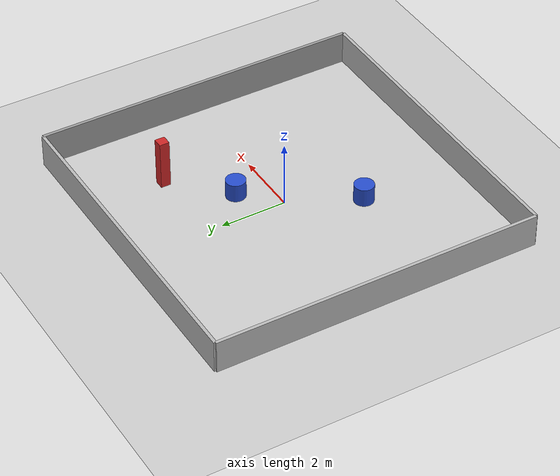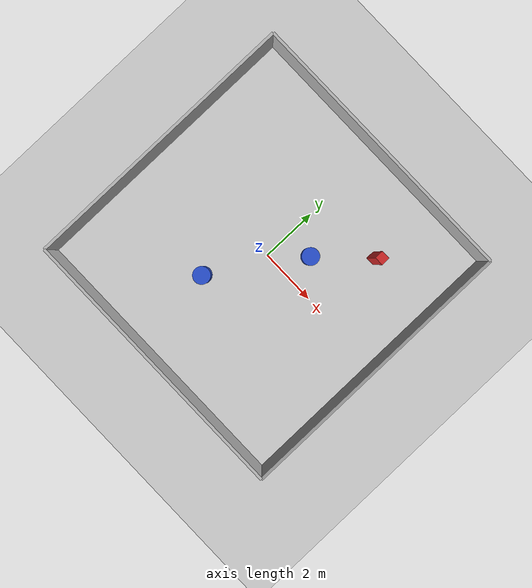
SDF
<?xml version="1.0" ?>
<sdf version="1.5">
  <world name="default">
    <include>
      <uri>model://ground_plane</uri>
    </include>
    <include>
      <uri>model://sun</uri>
    </include>

    <!-- 1. 封闭场所 (10m x 10m) -->
    <model name="room_walls">
      <static>true</static>
      <link name="link">
        <collision name="north"><pose>5 0 0.5 0 0 0</pose><geometry><box><size>0.1 10 1</size></box></geometry></collision>
        <visual name="north_v"><pose>5 0 0.5 0 0 0</pose><geometry><box><size>0.1 10 1</size></box></geometry><material><script><name>Gazebo/Grey</name></script></material></visual>
        <collision name="south"><pose>-5 0 0.5 0 0 0</pose><geometry><box><size>0.1 10 1</size></box></geometry></collision>
        <visual name="south_v"><pose>-5 0 0.5 0 0 0</pose><geometry><box><size>0.1 10 1</size></box></geometry></visual>
        <collision name="east"><pose>0 5 0.5 0 0 0</pose><geometry><box><size>10 0.1 1</size></box></geometry></collision>
        <visual name="east_v"><pose>0 5 0.5 0 0 0</pose><geometry><box><size>10 0.1 1</size></box></geometry></visual>
        <collision name="west"><pose>0 -5 0.5 0 0 0</pose><geometry><box><size>10 0.1 1</size></box></geometry></collision>
        <visual name="west_v"><pose>0 -5 0.5 0 0 0</pose><geometry><box><size>10 0.1 1</size></box></geometry></visual>
      </link>
    </model>

    <!-- 2. 动态物体 (真实的物理模型 + ROS控制插件) -->
    <model name="moving_obstacle">
      <static>false</static>
      <pose>2.5 2.5 0.75 0 0 0</pose>

      <link name="link">
        <!-- 必须关闭重力，防止它掉到地板下或与地面摩擦停滞 -->
        <gravity>false</gravity>

        <!-- 非静态模型必须包含惯性矩阵，否则 Gazebo 物理引擎会让它直接消失 -->
        <inertial>
          <mass>10.0</mass>
          <inertia>
            <ixx>1.0</ixx><ixy>0</ixy><ixz>0</ixz>
            <iyy>1.0</iyy><iyz>0</iyz>
            <izz>1.0</izz>
          </inertia>
        </inertial>

        <collision name="collision">
          <geometry><box><size>0.3 0.3 1.5</size></box></geometry>
        </collision>
        <visual name="visual">
          <geometry><box><size>0.3 0.3 1.5</size></box></geometry>
          <material>
            <script>
              <name>Gazebo/Red</name>
            </script>
          </material>
        </visual>
      </link>

      <!-- 使用平面移动插件，让我们可以通过 ROS 话题控制它 -->
      <plugin name="obstacle_controller" filename="libgazebo_ros_planar_move.so">
        <commandTopic>/obstacle_cmd_vel</commandTopic>
        <odometryTopic>/obstacle_odom</odometryTopic>
        <odometryFrame>odom_obstacle</odometryFrame>
        <odometryRate>20.0</odometryRate>
        <robotBaseFrame>link</robotBaseFrame>
      </plugin>
    </model>

    <!-- 3. 静态圆柱体 -->
    <model name="cylinder_1">
      <static>true</static>
      <pose>1 1 0.15 0 0 0</pose>
      <link name="link">
        <collision name="col"><geometry><cylinder><radius>0.3</radius><length>0.8</length></cylinder></geometry></collision>
        <visual name="vis"><geometry><cylinder><radius>0.3</radius><length>0.8</length></cylinder></geometry><material><script><name>Gazebo/Blue</name></script></material></visual>
      </link>
    </model>

    <model name="cylinder_2">
      <static>true</static>
      <pose>-1 -2 0.15 0 0 0</pose>
      <link name="link">
        <collision name="col"><geometry><cylinder><radius>0.3</radius><length>0.8</length></cylinder></geometry></collision>
        <visual name="vis"><geometry><cylinder><radius>0.3</radius><length>0.8</length></cylinder></geometry><material><script><name>Gazebo/Blue</name></script></material></visual>
      </link>
    </model>

  </world>
</sdf>
